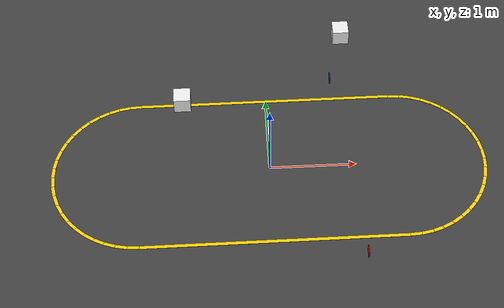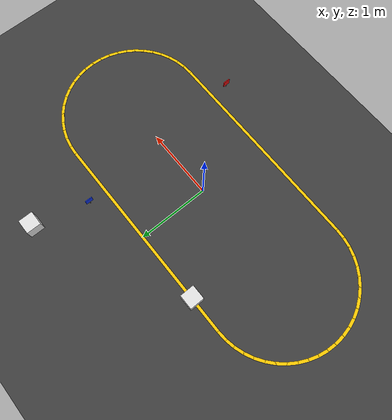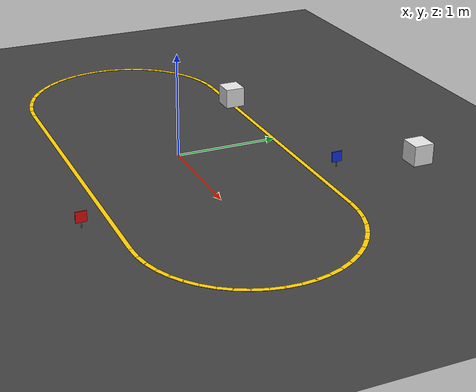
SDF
<?xml version="1.0"?>
<sdf version="1.9">
  <world name="track">
    <physics name="1ms" type="ignored">
      <max_step_size>0.001</max_step_size>
      <real_time_factor>1.0</real_time_factor>
    </physics>
    <plugin filename="gz-sim-physics-system" name="gz::sim::systems::Physics"/>
    <plugin filename="gz-sim-user-commands-system" name="gz::sim::systems::UserCommands"/>
    <plugin filename="gz-sim-scene-broadcaster-system" name="gz::sim::systems::SceneBroadcaster"/>
    <plugin filename="gz-sim-sensors-system" name="gz::sim::systems::Sensors">
      <render_engine>ogre2</render_engine>
    </plugin>
    <plugin filename="gz-sim-imu-system" name="gz::sim::systems::Imu"/>

    <light type="directional" name="sun">
      <cast_shadows>true</cast_shadows>
      <pose>0 0 10 0 0 0</pose>
      <diffuse>0.9 0.9 0.9 1</diffuse>
      <specular>0.2 0.2 0.2 1</specular>
      <direction>-0.5 0.1 -0.9</direction>
    </light>

    <model name="ground">
      <static>true</static>
      <link name="link">
        <collision name="c"><geometry><plane><normal>0 0 1</normal><size>12 8</size></plane></geometry></collision>
        <visual name="v"><geometry><plane><normal>0 0 1</normal><size>12 8</size></plane></geometry>
          <material><ambient>0.25 0.25 0.25 1</ambient><diffuse>0.25 0.25 0.25 1</diffuse></material>
        </visual>
      </link>
    </model>

    <model name="lane_line">
      <static>true</static>
      <link name="link">
        <visual name="seg_0"><pose>0.0000 -1.0000 0.001 0 0 0.0000</pose><geometry><box><size>3.0000 0.04 0.002</size></box></geometry><material><ambient>1 0.8 0 1</ambient><diffuse>1 0.8 0 1</diffuse></material></visual>
        <visual name="seg_1"><pose>0.0000 1.0000 0.001 0 0 3.1416</pose><geometry><box><size>3.0000 0.04 0.002</size></box></geometry><material><ambient>1 0.8 0 1</ambient><diffuse>1 0.8 0 1</diffuse></material></visual>
        <visual name="seg_2"><pose>1.5653 -0.9957 0.001 0 0 0.0654</pose><geometry><box><size>0.1408 0.04 0.002</size></box></geometry><material><ambient>1 0.8 0 1</ambient><diffuse>1 0.8 0 1</diffuse></material></visual>
        <visual name="seg_3"><pose>1.6947 -0.9787 0.001 0 0 0.1963</pose><geometry><box><size>0.1408 0.04 0.002</size></box></geometry><material><ambient>1 0.8 0 1</ambient><diffuse>1 0.8 0 1</diffuse></material></visual>
        <visual name="seg_4"><pose>1.8208 -0.9449 0.001 0 0 0.3272</pose><geometry><box><size>0.1408 0.04 0.002</size></box></geometry><material><ambient>1 0.8 0 1</ambient><diffuse>1 0.8 0 1</diffuse></material></visual>
        <visual name="seg_5"><pose>1.9413 -0.8950 0.001 0 0 0.4581</pose><geometry><box><size>0.1408 0.04 0.002</size></box></geometry><material><ambient>1 0.8 0 1</ambient><diffuse>1 0.8 0 1</diffuse></material></visual>
        <visual name="seg_6"><pose>2.0544 -0.8297 0.001 0 0 0.5890</pose><geometry><box><size>0.1408 0.04 0.002</size></box></geometry><material><ambient>1 0.8 0 1</ambient><diffuse>1 0.8 0 1</diffuse></material></visual>
        <visual name="seg_7"><pose>2.1579 -0.7502 0.001 0 0 0.7199</pose><geometry><box><size>0.1408 0.04 0.002</size></box></geometry><material><ambient>1 0.8 0 1</ambient><diffuse>1 0.8 0 1</diffuse></material></visual>
        <visual name="seg_8"><pose>2.2502 -0.6579 0.001 0 0 0.8508</pose><geometry><box><size>0.1408 0.04 0.002</size></box></geometry><material><ambient>1 0.8 0 1</ambient><diffuse>1 0.8 0 1</diffuse></material></visual>
        <visual name="seg_9"><pose>2.3297 -0.5544 0.001 0 0 0.9817</pose><geometry><box><size>0.1408 0.04 0.002</size></box></geometry><material><ambient>1 0.8 0 1</ambient><diffuse>1 0.8 0 1</diffuse></material></visual>
        <visual name="seg_10"><pose>2.3950 -0.4413 0.001 0 0 1.1126</pose><geometry><box><size>0.1408 0.04 0.002</size></box></geometry><material><ambient>1 0.8 0 1</ambient><diffuse>1 0.8 0 1</diffuse></material></visual>
        <visual name="seg_11"><pose>2.4449 -0.3208 0.001 0 0 1.2435</pose><geometry><box><size>0.1408 0.04 0.002</size></box></geometry><material><ambient>1 0.8 0 1</ambient><diffuse>1 0.8 0 1</diffuse></material></visual>
        <visual name="seg_12"><pose>2.4787 -0.1947 0.001 0 0 1.3744</pose><geometry><box><size>0.1408 0.04 0.002</size></box></geometry><material><ambient>1 0.8 0 1</ambient><diffuse>1 0.8 0 1</diffuse></material></visual>
        <visual name="seg_13"><pose>2.4957 -0.0653 0.001 0 0 1.5053</pose><geometry><box><size>0.1408 0.04 0.002</size></box></geometry><material><ambient>1 0.8 0 1</ambient><diffuse>1 0.8 0 1</diffuse></material></visual>
        <visual name="seg_14"><pose>2.4957 0.0653 0.001 0 0 1.6362</pose><geometry><box><size>0.1408 0.04 0.002</size></box></geometry><material><ambient>1 0.8 0 1</ambient><diffuse>1 0.8 0 1</diffuse></material></visual>
        <visual name="seg_15"><pose>2.4787 0.1947 0.001 0 0 1.7671</pose><geometry><box><size>0.1408 0.04 0.002</size></box></geometry><material><ambient>1 0.8 0 1</ambient><diffuse>1 0.8 0 1</diffuse></material></visual>
        <visual name="seg_16"><pose>2.4449 0.3208 0.001 0 0 1.8980</pose><geometry><box><size>0.1408 0.04 0.002</size></box></geometry><material><ambient>1 0.8 0 1</ambient><diffuse>1 0.8 0 1</diffuse></material></visual>
        <visual name="seg_17"><pose>2.3950 0.4413 0.001 0 0 2.0289</pose><geometry><box><size>0.1408 0.04 0.002</size></box></geometry><material><ambient>1 0.8 0 1</ambient><diffuse>1 0.8 0 1</diffuse></material></visual>
        <visual name="seg_18"><pose>2.3297 0.5544 0.001 0 0 2.1598</pose><geometry><box><size>0.1408 0.04 0.002</size></box></geometry><material><ambient>1 0.8 0 1</ambient><diffuse>1 0.8 0 1</diffuse></material></visual>
        <visual name="seg_19"><pose>2.2502 0.6579 0.001 0 0 2.2907</pose><geometry><box><size>0.1408 0.04 0.002</size></box></geometry><material><ambient>1 0.8 0 1</ambient><diffuse>1 0.8 0 1</diffuse></material></visual>
        <visual name="seg_20"><pose>2.1579 0.7502 0.001 0 0 2.4216</pose><geometry><box><size>0.1408 0.04 0.002</size></box></geometry><material><ambient>1 0.8 0 1</ambient><diffuse>1 0.8 0 1</diffuse></material></visual>
        <visual name="seg_21"><pose>2.0544 0.8297 0.001 0 0 2.5525</pose><geometry><box><size>0.1408 0.04 0.002</size></box></geometry><material><ambient>1 0.8 0 1</ambient><diffuse>1 0.8 0 1</diffuse></material></visual>
        <visual name="seg_22"><pose>1.9413 0.8950 0.001 0 0 2.6834</pose><geometry><box><size>0.1408 0.04 0.002</size></box></geometry><material><ambient>1 0.8 0 1</ambient><diffuse>1 0.8 0 1</diffuse></material></visual>
        <visual name="seg_23"><pose>1.8208 0.9449 0.001 0 0 2.8143</pose><geometry><box><size>0.1408 0.04 0.002</size></box></geometry><material><ambient>1 0.8 0 1</ambient><diffuse>1 0.8 0 1</diffuse></material></visual>
        <visual name="seg_24"><pose>1.6947 0.9787 0.001 0 0 2.9452</pose><geometry><box><size>0.1408 0.04 0.002</size></box></geometry><material><ambient>1 0.8 0 1</ambient><diffuse>1 0.8 0 1</diffuse></material></visual>
        <visual name="seg_25"><pose>1.5653 0.9957 0.001 0 0 3.0761</pose><geometry><box><size>0.1408 0.04 0.002</size></box></geometry><material><ambient>1 0.8 0 1</ambient><diffuse>1 0.8 0 1</diffuse></material></visual>
        <visual name="seg_26"><pose>-1.5653 0.9957 0.001 0 0 -3.0761</pose><geometry><box><size>0.1408 0.04 0.002</size></box></geometry><material><ambient>1 0.8 0 1</ambient><diffuse>1 0.8 0 1</diffuse></material></visual>
        <visual name="seg_27"><pose>-1.6947 0.9787 0.001 0 0 -2.9452</pose><geometry><box><size>0.1408 0.04 0.002</size></box></geometry><material><ambient>1 0.8 0 1</ambient><diffuse>1 0.8 0 1</diffuse></material></visual>
        <visual name="seg_28"><pose>-1.8208 0.9449 0.001 0 0 -2.8143</pose><geometry><box><size>0.1408 0.04 0.002</size></box></geometry><material><ambient>1 0.8 0 1</ambient><diffuse>1 0.8 0 1</diffuse></material></visual>
        <visual name="seg_29"><pose>-1.9413 0.8950 0.001 0 0 -2.6834</pose><geometry><box><size>0.1408 0.04 0.002</size></box></geometry><material><ambient>1 0.8 0 1</ambient><diffuse>1 0.8 0 1</diffuse></material></visual>
        <visual name="seg_30"><pose>-2.0544 0.8297 0.001 0 0 -2.5525</pose><geometry><box><size>0.1408 0.04 0.002</size></box></geometry><material><ambient>1 0.8 0 1</ambient><diffuse>1 0.8 0 1</diffuse></material></visual>
        <visual name="seg_31"><pose>-2.1579 0.7502 0.001 0 0 -2.4216</pose><geometry><box><size>0.1408 0.04 0.002</size></box></geometry><material><ambient>1 0.8 0 1</ambient><diffuse>1 0.8 0 1</diffuse></material></visual>
        <visual name="seg_32"><pose>-2.2502 0.6579 0.001 0 0 -2.2907</pose><geometry><box><size>0.1408 0.04 0.002</size></box></geometry><material><ambient>1 0.8 0 1</ambient><diffuse>1 0.8 0 1</diffuse></material></visual>
        <visual name="seg_33"><pose>-2.3297 0.5544 0.001 0 0 -2.1598</pose><geometry><box><size>0.1408 0.04 0.002</size></box></geometry><material><ambient>1 0.8 0 1</ambient><diffuse>1 0.8 0 1</diffuse></material></visual>
        <visual name="seg_34"><pose>-2.3950 0.4413 0.001 0 0 -2.0289</pose><geometry><box><size>0.1408 0.04 0.002</size></box></geometry><material><ambient>1 0.8 0 1</ambient><diffuse>1 0.8 0 1</diffuse></material></visual>
        <visual name="seg_35"><pose>-2.4449 0.3208 0.001 0 0 -1.8980</pose><geometry><box><size>0.1408 0.04 0.002</size></box></geometry><material><ambient>1 0.8 0 1</ambient><diffuse>1 0.8 0 1</diffuse></material></visual>
        <visual name="seg_36"><pose>-2.4787 0.1947 0.001 0 0 -1.7671</pose><geometry><box><size>0.1408 0.04 0.002</size></box></geometry><material><ambient>1 0.8 0 1</ambient><diffuse>1 0.8 0 1</diffuse></material></visual>
        <visual name="seg_37"><pose>-2.4957 0.0653 0.001 0 0 -1.6362</pose><geometry><box><size>0.1408 0.04 0.002</size></box></geometry><material><ambient>1 0.8 0 1</ambient><diffuse>1 0.8 0 1</diffuse></material></visual>
        <visual name="seg_38"><pose>-2.4957 -0.0653 0.001 0 0 -1.5053</pose><geometry><box><size>0.1408 0.04 0.002</size></box></geometry><material><ambient>1 0.8 0 1</ambient><diffuse>1 0.8 0 1</diffuse></material></visual>
        <visual name="seg_39"><pose>-2.4787 -0.1947 0.001 0 0 -1.3744</pose><geometry><box><size>0.1408 0.04 0.002</size></box></geometry><material><ambient>1 0.8 0 1</ambient><diffuse>1 0.8 0 1</diffuse></material></visual>
        <visual name="seg_40"><pose>-2.4449 -0.3208 0.001 0 0 -1.2435</pose><geometry><box><size>0.1408 0.04 0.002</size></box></geometry><material><ambient>1 0.8 0 1</ambient><diffuse>1 0.8 0 1</diffuse></material></visual>
        <visual name="seg_41"><pose>-2.3950 -0.4413 0.001 0 0 -1.1126</pose><geometry><box><size>0.1408 0.04 0.002</size></box></geometry><material><ambient>1 0.8 0 1</ambient><diffuse>1 0.8 0 1</diffuse></material></visual>
        <visual name="seg_42"><pose>-2.3297 -0.5544 0.001 0 0 -0.9817</pose><geometry><box><size>0.1408 0.04 0.002</size></box></geometry><material><ambient>1 0.8 0 1</ambient><diffuse>1 0.8 0 1</diffuse></material></visual>
        <visual name="seg_43"><pose>-2.2502 -0.6579 0.001 0 0 -0.8508</pose><geometry><box><size>0.1408 0.04 0.002</size></box></geometry><material><ambient>1 0.8 0 1</ambient><diffuse>1 0.8 0 1</diffuse></material></visual>
        <visual name="seg_44"><pose>-2.1579 -0.7502 0.001 0 0 -0.7199</pose><geometry><box><size>0.1408 0.04 0.002</size></box></geometry><material><ambient>1 0.8 0 1</ambient><diffuse>1 0.8 0 1</diffuse></material></visual>
        <visual name="seg_45"><pose>-2.0544 -0.8297 0.001 0 0 -0.5890</pose><geometry><box><size>0.1408 0.04 0.002</size></box></geometry><material><ambient>1 0.8 0 1</ambient><diffuse>1 0.8 0 1</diffuse></material></visual>
        <visual name="seg_46"><pose>-1.9413 -0.8950 0.001 0 0 -0.4581</pose><geometry><box><size>0.1408 0.04 0.002</size></box></geometry><material><ambient>1 0.8 0 1</ambient><diffuse>1 0.8 0 1</diffuse></material></visual>
        <visual name="seg_47"><pose>-1.8208 -0.9449 0.001 0 0 -0.3272</pose><geometry><box><size>0.1408 0.04 0.002</size></box></geometry><material><ambient>1 0.8 0 1</ambient><diffuse>1 0.8 0 1</diffuse></material></visual>
        <visual name="seg_48"><pose>-1.6947 -0.9787 0.001 0 0 -0.1963</pose><geometry><box><size>0.1408 0.04 0.002</size></box></geometry><material><ambient>1 0.8 0 1</ambient><diffuse>1 0.8 0 1</diffuse></material></visual>
        <visual name="seg_49"><pose>-1.5653 -0.9957 0.001 0 0 -0.0654</pose><geometry><box><size>0.1408 0.04 0.002</size></box></geometry><material><ambient>1 0.8 0 1</ambient><diffuse>1 0.8 0 1</diffuse></material></visual>
      </link>
    </model>

    <model name="obstacle_1">
      <pose>-1.0 1.0 0.1 0 0 0</pose>
      <link name="link">
        <inertial><mass>1.0</mass>
          <inertia><ixx>0.007</ixx><iyy>0.007</iyy><izz>0.007</izz></inertia>
        </inertial>
        <collision name="c"><geometry><box><size>0.2 0.2 0.2</size></box></geometry></collision>
        <visual name="v"><geometry><box><size>0.2 0.2 0.2</size></box></geometry>
          <material><ambient>0.9 0.9 0.9 1</ambient><diffuse>0.9 0.9 0.9 1</diffuse></material>
        </visual>
      </link>
    </model>

    <model name="obstacle_2">
      <pose>1.0 2.0 0.1 0 0 0</pose>
      <link name="link">
        <inertial><mass>1.0</mass>
          <inertia><ixx>0.007</ixx><iyy>0.007</iyy><izz>0.007</izz></inertia>
        </inertial>
        <collision name="c"><geometry><box><size>0.2 0.2 0.2</size></box></geometry></collision>
        <visual name="v"><geometry><box><size>0.2 0.2 0.2</size></box></geometry>
          <material><ambient>0.9 0.9 0.9 1</ambient><diffuse>0.9 0.9 0.9 1</diffuse></material>
        </visual>
      </link>
    </model>

    <model name="stop_sign">
      <static>true</static>
      <pose>1.0 -1.25 0 0 0 0</pose>
      <link name="link">
        <visual name="post"><pose>0 0 0.025 0 0 0</pose>
          <geometry><cylinder><radius>0.005</radius><length>0.05</length></cylinder></geometry>
          <material><ambient>0.6 0.6 0.6 1</ambient><diffuse>0.6 0.6 0.6 1</diffuse></material>
        </visual>
        <visual name="board"><pose>0 0 0.10 0 0 0</pose>
          <geometry><box><size>0.01 0.1 0.1</size></box></geometry>
          <material><ambient>0.9 0.05 0.05 1</ambient><diffuse>0.9 0.05 0.05 1</diffuse></material>
        </visual>
      </link>
    </model>

    <model name="slow_sign">
      <static>true</static>
      <pose>0.8 1.25 0 0 0 0</pose>
      <link name="link">
        <visual name="post"><pose>0 0 0.025 0 0 0</pose>
          <geometry><cylinder><radius>0.005</radius><length>0.05</length></cylinder></geometry>
          <material><ambient>0.6 0.6 0.6 1</ambient><diffuse>0.6 0.6 0.6 1</diffuse></material>
        </visual>
        <visual name="board"><pose>0 0 0.10 0 0 0</pose>
          <geometry><box><size>0.01 0.1 0.1</size></box></geometry>
          <material><ambient>0.05 0.2 0.9 1</ambient><diffuse>0.05 0.2 0.9 1</diffuse></material>
        </visual>
      </link>
    </model>
  </world>
</sdf>
